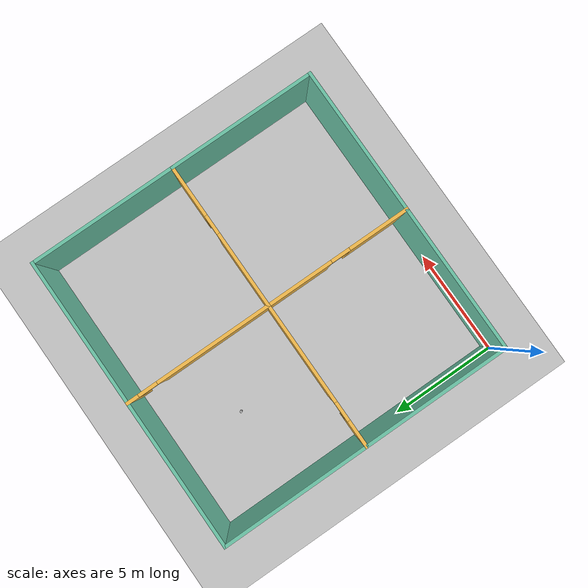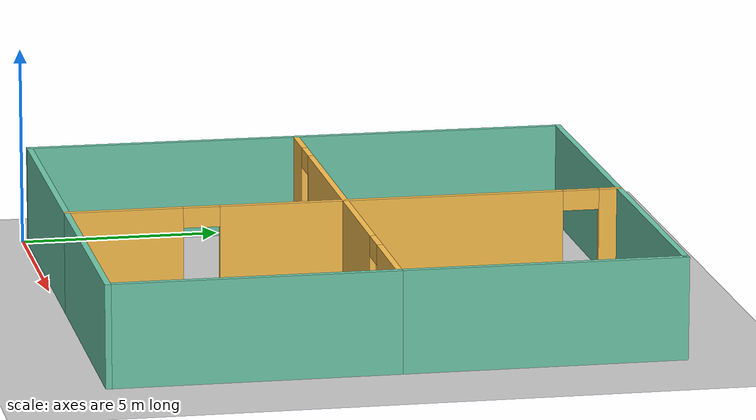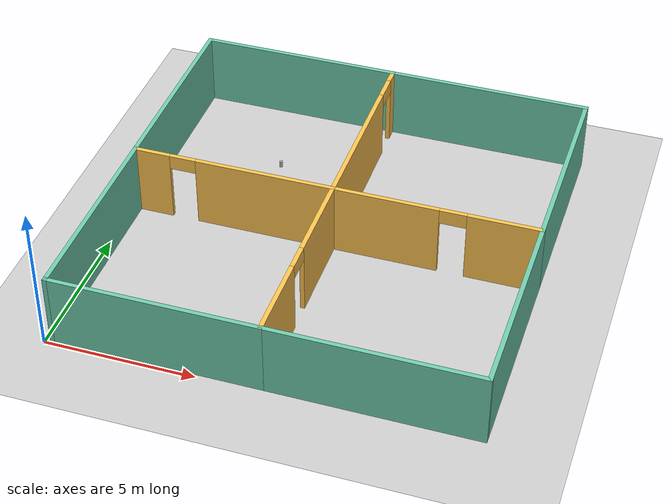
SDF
<sdf version="1.7">
 <world name="default">
  <light name="sun" type="directional">
   <pose>0 0 10 0 -0 0</pose>
   <diffuse>0.8 0.8 0.8 1</diffuse>
   <specular>0.2 0.2 0.2 1</specular>
   <attenuation>
    <range>1000</range>
    <constant>0.9</constant>
    <linear>0.01</linear>
    <quadratic>0.001</quadratic>
   </attenuation>
   <direction>-0.5 0.1 -0.9</direction>
   <spot><inner_angle>0</inner_angle><outer_angle>0</outer_angle><falloff>0</falloff></spot>
  </light>
  <model name="ground_plane">
   <static>1</static>
   <link name="link">
    <collision name="collision">
     <geometry><plane><normal>0 0 1</normal><size>100 100</size></plane></geometry>
     <surface>
      <contact><collide_bitmask>65535</collide_bitmask></contact>
      <friction><ode><mu>100</mu><mu2>50</mu2></ode></friction>
     </surface>
    </collision>
    <visual name="visual">
     <cast_shadows>0</cast_shadows>
     <geometry><plane><normal>0 0 1</normal><size>100 100</size></plane></geometry>
     <material>
      <script><uri>file://media/materials/scripts/gazebo.material</uri><name>Gazebo/Grey</name></script>
     </material>
    </visual>
   </link>
  </model>
  <gravity>0 0 -9.8</gravity>
  <magnetic_field>6e-06 2.3e-05 -4.2e-05</magnetic_field>
  <atmosphere type="adiabatic"/>
  <physics type="ode">
   <max_step_size>0.001</max_step_size>
   <real_time_factor>1</real_time_factor>
   <real_time_update_rate>1000</real_time_update_rate>
  </physics>
  <scene><ambient>0.4 0.4 0.4 1</ambient><background>0.7 0.7 0.7 1</background><shadows>1</shadows></scene>
  <audio><device>default</device></audio>
  <spherical_coordinates>
   <surface_model>EARTH_WGS84</surface_model>
   <latitude_deg>0</latitude_deg>
   <longitude_deg>0</longitude_deg>
   <elevation>0</elevation>
   <heading_deg>0</heading_deg>
  </spherical_coordinates>
  <model name="plane_5">
   <pose>7.06663 7.02985 0 0 -0 0</pose>
   <link name="Wall_10">
    <collision name="Wall_10_Collision">
     <geometry><box><size>7 0.15 2.5</size></box></geometry>
     <pose>0 0 1.25 0 -0 0</pose>
    </collision>
    <visual name="Wall_10_Visual">
     <pose>0 0 1.25 0 -0 0</pose>
     <geometry><box><size>7 0.15 2.5</size></box></geometry>
     <material>
      <script><uri>file://media/materials/scripts/gazebo.material</uri><name>Gazebo/Grey</name></script>
      <ambient>0.435294 0.796078 0.67451 1</ambient>
     </material>
     <meta><layer>0</layer></meta>
    </visual>
    <pose>3.425 -6.85 0 0 -0 3.14159</pose>
   </link>
   <link name="Wall_12">
    <collision name="Wall_12_Collision">
     <geometry><box><size>7 0.15 2.5</size></box></geometry>
     <pose>0 0 1.25 0 -0 0</pose>
    </collision>
    <visual name="Wall_12_Visual">
     <pose>0 0 1.25 0 -0 0</pose>
     <geometry><box><size>7 0.15 2.5</size></box></geometry>
     <material>
      <script><uri>file://media/materials/scripts/gazebo.material</uri><name>Gazebo/Grey</name></script>
      <ambient>0.435294 0.796078 0.67451 1</ambient>
     </material>
     <meta><layer>0</layer></meta>
    </visual>
    <pose>-6.85 3.425 0 0 -0 1.5708</pose>
   </link>
   <link name="Wall_13">
    <collision name="Wall_13_Collision">
     <geometry><box><size>7 0.15 2.5</size></box></geometry>
     <pose>0 0 1.25 0 -0 0</pose>
    </collision>
    <visual name="Wall_13_Visual">
     <pose>0 0 1.25 0 -0 0</pose>
     <geometry><box><size>7 0.15 2.5</size></box></geometry>
     <material>
      <script><uri>file://media/materials/scripts/gazebo.material</uri><name>Gazebo/Grey</name></script>
      <ambient>0.435294 0.796078 0.67451 1</ambient>
     </material>
     <meta><layer>0</layer></meta>
    </visual>
    <pose>-3.425 6.85 0 0 -0 0</pose>
   </link>
   <link name="Wall_14">
    <pose>0 3.425 0 0 -0 -1.5708</pose>
    <visual name="Wall_14_Visual_0">
     <pose>-3.20236 0 1.25 0 -0 0</pose>
     <geometry><box><size>0.595276 0.15 2.5</size></box></geometry>
     <material>
      <script><uri>file://media/materials/scripts/gazebo.material</uri><name>Gazebo/Grey</name></script>
      <ambient>1 0.764706 0.305882 1</ambient>
     </material>
     <meta><layer>0</layer></meta>
    </visual>
    <collision name="Wall_14_Collision_0">
     <geometry><box><size>0.595276 0.15 2.5</size></box></geometry>
     <pose>-3.20236 0 1.25 0 -0 0</pose>
    </collision>
    <visual name="Wall_14_Visual_1">
     <pose>0.747638 0 1.25 0 -0 0</pose>
     <geometry><box><size>5.50472 0.15 2.5</size></box></geometry>
     <material>
      <script><uri>file://media/materials/scripts/gazebo.material</uri><name>Gazebo/Grey</name></script>
      <ambient>1 0.764706 0.305882 1</ambient>
     </material>
     <meta><layer>0</layer></meta>
    </visual>
    <collision name="Wall_14_Collision_1">
     <geometry><box><size>5.50472 0.15 2.5</size></box></geometry>
     <pose>0.747638 0 1.25 0 -0 0</pose>
    </collision>
    <visual name="Wall_14_Visual_2">
     <pose>-2.45472 0 2.25 0 -0 0</pose>
     <geometry><box><size>0.9 0.15 0.5</size></box></geometry>
     <material>
      <script><uri>file://media/materials/scripts/gazebo.material</uri><name>Gazebo/Grey</name></script>
      <ambient>1 0.764706 0.305882 1</ambient>
     </material>
     <meta><layer>0</layer></meta>
    </visual>
    <collision name="Wall_14_Collision_2">
     <geometry><box><size>0.9 0.15 0.5</size></box></geometry>
     <pose>-2.45472 0 2.25 0 -0 0</pose>
    </collision>
   </link>
   <link name="Wall_16">
    <collision name="Wall_16_Collision">
     <geometry><box><size>7 0.15 2.5</size></box></geometry>
     <pose>0 0 1.25 0 -0 0</pose>
    </collision>
    <visual name="Wall_16_Visual">
     <pose>0 0 1.25 0 -0 0</pose>
     <geometry><box><size>7 0.15 2.5</size></box></geometry>
     <material>
      <script><uri>file://media/materials/scripts/gazebo.material</uri><name>Gazebo/Grey</name></script>
      <ambient>0.435294 0.796078 0.67451 1</ambient>
     </material>
     <meta><layer>0</layer></meta>
    </visual>
    <pose>3.425 6.85 0 0 -0 0</pose>
   </link>
   <link name="Wall_17">
    <collision name="Wall_17_Collision">
     <geometry><box><size>7 0.15 2.5</size></box></geometry>
     <pose>0 0 1.25 0 -0 0</pose>
    </collision>
    <visual name="Wall_17_Visual">
     <pose>0 0 1.25 0 -0 0</pose>
     <geometry><box><size>7 0.15 2.5</size></box></geometry>
     <material>
      <script><uri>file://media/materials/scripts/gazebo.material</uri><name>Gazebo/Grey</name></script>
      <ambient>0.435294 0.796078 0.67451 1</ambient>
     </material>
     <meta><layer>0</layer></meta>
    </visual>
    <pose>6.85 3.425 0 0 -0 -1.5708</pose>
   </link>
   <link name="Wall_3">
    <collision name="Wall_3_Collision">
     <geometry><box><size>7 0.15 2.5</size></box></geometry>
     <pose>0 0 1.25 0 -0 0</pose>
    </collision>
    <visual name="Wall_3_Visual">
     <pose>0 0 1.25 0 -0 0</pose>
     <geometry><box><size>7 0.15 2.5</size></box></geometry>
     <material>
      <script><uri>file://media/materials/scripts/gazebo.material</uri><name>Gazebo/Grey</name></script>
      <ambient>0.435294 0.796078 0.67451 1</ambient>
     </material>
     <meta><layer>0</layer></meta>
    </visual>
    <pose>-6.85 -3.425 0 0 -0 1.5708</pose>
   </link>
   <link name="Wall_4">
    <pose>-3.425 -0 0 0 -0 0</pose>
    <visual name="Wall_4_Visual_0">
     <pose>-2.84341 0 1.25 0 -0 0</pose>
     <geometry><box><size>1.31317 0.15 2.5</size></box></geometry>
     <material>
      <script><uri>file://media/materials/scripts/gazebo.material</uri><name>Gazebo/Grey</name></script>
      <ambient>1 0.764706 0.305882 1</ambient>
     </material>
     <meta><layer>0</layer></meta>
    </visual>
    <collision name="Wall_4_Collision_0">
     <geometry><box><size>1.31317 0.15 2.5</size></box></geometry>
     <pose>-2.84341 0 1.25 0 -0 0</pose>
    </collision>
    <visual name="Wall_4_Visual_1">
     <pose>1.10659 0 1.25 0 -0 0</pose>
     <geometry><box><size>4.78683 0.15 2.5</size></box></geometry>
     <material>
      <script><uri>file://media/materials/scripts/gazebo.material</uri><name>Gazebo/Grey</name></script>
      <ambient>1 0.764706 0.305882 1</ambient>
     </material>
     <meta><layer>0</layer></meta>
    </visual>
    <collision name="Wall_4_Collision_1">
     <geometry><box><size>4.78683 0.15 2.5</size></box></geometry>
     <pose>1.10659 0 1.25 0 -0 0</pose>
    </collision>
    <visual name="Wall_4_Visual_2">
     <pose>-1.73683 0 2.25 0 -0 0</pose>
     <geometry><box><size>0.9 0.15 0.5</size></box></geometry>
     <material>
      <script><uri>file://media/materials/scripts/gazebo.material</uri><name>Gazebo/Grey</name></script>
      <ambient>1 0.764706 0.305882 1</ambient>
     </material>
     <meta><layer>0</layer></meta>
    </visual>
    <collision name="Wall_4_Collision_2">
     <geometry><box><size>0.9 0.15 0.5</size></box></geometry>
     <pose>-1.73683 0 2.25 0 -0 0</pose>
    </collision>
   </link>
   <link name="Wall_5">
    <pose>0 -3.425 0 0 -0 -1.5708</pose>
    <visual name="Wall_5_Visual_0">
     <pose>-1.90912 0 1.25 0 -0 0</pose>
     <geometry><box><size>3.18176 0.15 2.5</size></box></geometry>
     <material>
      <script><uri>file://media/materials/scripts/gazebo.material</uri><name>Gazebo/Grey</name></script>
      <ambient>1 0.764706 0.305882 1</ambient>
     </material>
     <meta><layer>0</layer></meta>
    </visual>
    <collision name="Wall_5_Collision_0">
     <geometry><box><size>3.18176 0.15 2.5</size></box></geometry>
     <pose>-1.90912 0 1.25 0 -0 0</pose>
    </collision>
    <visual name="Wall_5_Visual_1">
     <pose>2.04088 0 1.25 0 -0 0</pose>
     <geometry><box><size>2.91824 0.15 2.5</size></box></geometry>
     <material>
      <script><uri>file://media/materials/scripts/gazebo.material</uri><name>Gazebo/Grey</name></script>
      <ambient>1 0.764706 0.305882 1</ambient>
     </material>
     <meta><layer>0</layer></meta>
    </visual>
    <collision name="Wall_5_Collision_1">
     <geometry><box><size>2.91824 0.15 2.5</size></box></geometry>
     <pose>2.04088 0 1.25 0 -0 0</pose>
    </collision>
    <visual name="Wall_5_Visual_2">
     <pose>0.131759 0 2.25 0 -0 0</pose>
     <geometry><box><size>0.9 0.15 0.5</size></box></geometry>
     <material>
      <script><uri>file://media/materials/scripts/gazebo.material</uri><name>Gazebo/Grey</name></script>
      <ambient>1 0.764706 0.305882 1</ambient>
     </material>
     <meta><layer>0</layer></meta>
    </visual>
    <collision name="Wall_5_Collision_2">
     <geometry><box><size>0.9 0.15 0.5</size></box></geometry>
     <pose>0.131759 0 2.25 0 -0 0</pose>
    </collision>
   </link>
   <link name="Wall_6">
    <collision name="Wall_6_Collision">
     <geometry><box><size>7 0.15 2.5</size></box></geometry>
     <pose>0 0 1.25 0 -0 0</pose>
    </collision>
    <visual name="Wall_6_Visual">
     <pose>0 0 1.25 0 -0 0</pose>
     <geometry><box><size>7 0.15 2.5</size></box></geometry>
     <material>
      <script><uri>file://media/materials/scripts/gazebo.material</uri><name>Gazebo/Grey</name></script>
      <ambient>0.435294 0.796078 0.67451 1</ambient>
     </material>
     <meta><layer>0</layer></meta>
    </visual>
    <pose>-3.425 -6.85 0 0 -0 3.14159</pose>
   </link>
   <link name="Wall_8">
    <pose>3.425 -0 0 0 -0 0</pose>
    <visual name="Wall_8_Visual_0">
     <pose>-1.69058 0 1.25 0 -0 0</pose>
     <geometry><box><size>3.61884 0.15 2.5</size></box></geometry>
     <material>
      <script><uri>file://media/materials/scripts/gazebo.material</uri><name>Gazebo/Grey</name></script>
      <ambient>1 0.764706 0.305882 1</ambient>
     </material>
     <meta><layer>0</layer></meta>
    </visual>
    <collision name="Wall_8_Collision_0">
     <geometry><box><size>3.61884 0.15 2.5</size></box></geometry>
     <pose>-1.69058 0 1.25 0 -0 0</pose>
    </collision>
    <visual name="Wall_8_Visual_1">
     <pose>2.25942 0 1.25 0 -0 0</pose>
     <geometry><box><size>2.48116 0.15 2.5</size></box></geometry>
     <material>
      <script><uri>file://media/materials/scripts/gazebo.material</uri><name>Gazebo/Grey</name></script>
      <ambient>1 0.764706 0.305882 1</ambient>
     </material>
     <meta><layer>0</layer></meta>
    </visual>
    <collision name="Wall_8_Collision_1">
     <geometry><box><size>2.48116 0.15 2.5</size></box></geometry>
     <pose>2.25942 0 1.25 0 -0 0</pose>
    </collision>
    <visual name="Wall_8_Visual_2">
     <pose>0.568839 0 2.25 0 -0 0</pose>
     <geometry><box><size>0.9 0.15 0.5</size></box></geometry>
     <material>
      <script><uri>file://media/materials/scripts/gazebo.material</uri><name>Gazebo/Grey</name></script>
      <ambient>1 0.764706 0.305882 1</ambient>
     </material>
     <meta><layer>0</layer></meta>
    </visual>
    <collision name="Wall_8_Collision_2">
     <geometry><box><size>0.9 0.15 0.5</size></box></geometry>
     <pose>0.568839 0 2.25 0 -0 0</pose>
    </collision>
   </link>
   <link name="Wall_9">
    <collision name="Wall_9_Collision">
     <geometry><box><size>7 0.15 2.5</size></box></geometry>
     <pose>0 0 1.25 0 -0 0</pose>
    </collision>
    <visual name="Wall_9_Visual">
     <pose>0 0 1.25 0 -0 0</pose>
     <geometry><box><size>7 0.15 2.5</size></box></geometry>
     <material>
      <script><uri>file://media/materials/scripts/gazebo.material</uri><name>Gazebo/Grey</name></script>
      <ambient>0.435294 0.796078 0.67451 1</ambient>
     </material>
     <meta><layer>0</layer></meta>
    </visual>
    <pose>6.85 -3.425 0 0 -0 -1.5708</pose>
   </link>
   <static>1</static>
  </model>
  <model name="beer">
   <link name="link">
    <pose>0 0 0.115 0 -0 0</pose>
    <inertial>
     <mass>0.39</mass>
     <inertia><ixx>0.00058</ixx><ixy>0</ixy><ixz>0</ixz><iyy>0.00058</iyy><iyz>0</iyz><izz>0.00019</izz></inertia>
    </inertial>
    <collision name="collision">
     <geometry><cylinder><radius>0.055</radius><length>0.23</length></cylinder></geometry>
    </collision>
    <visual name="visual">
     <geometry><cylinder><radius>0.055</radius><length>0.23</length></cylinder></geometry>
     <material>
      <script>
       <uri>model://beer/materials/scripts</uri>
       <uri>model://beer/materials/textures</uri>
       <name>Beer/Diffuse</name>
      </script>
     </material>
    </visual>
   </link>
   <pose>4.00802 10.6343 -2e-06 1e-06 -0 -3e-06</pose>
  </model>
 </world>
</sdf>
